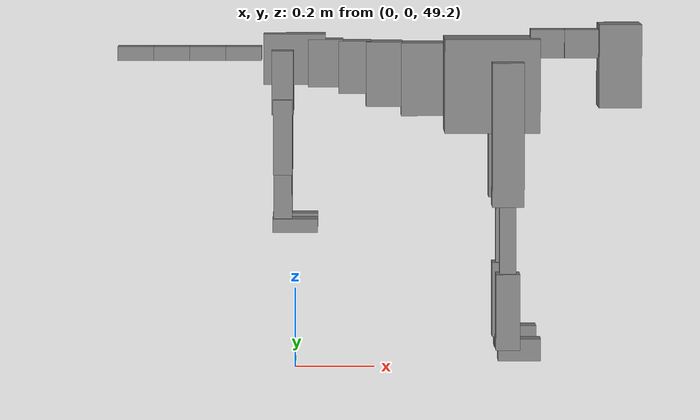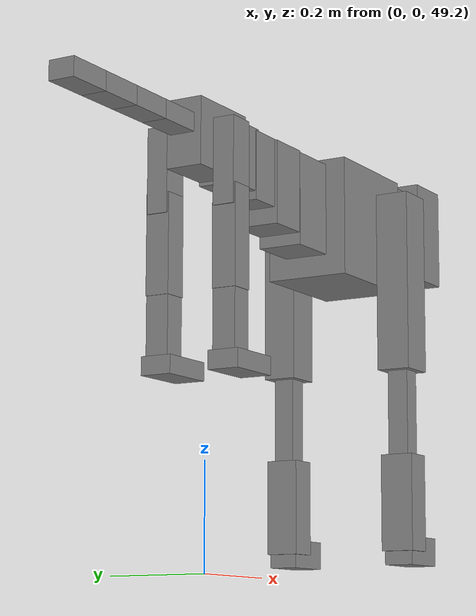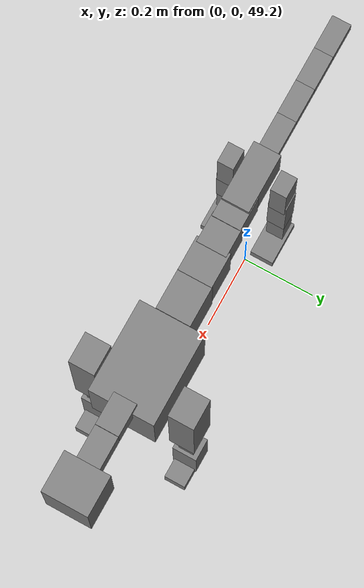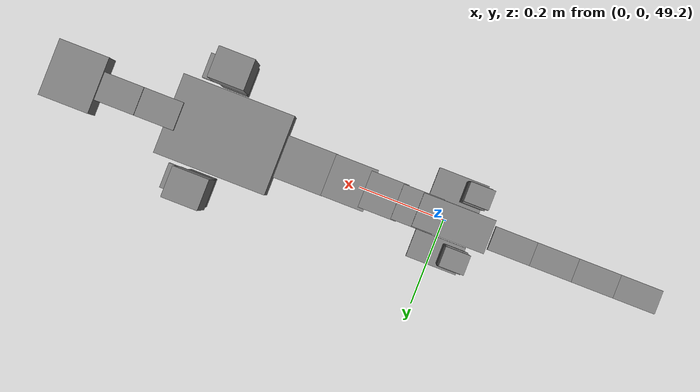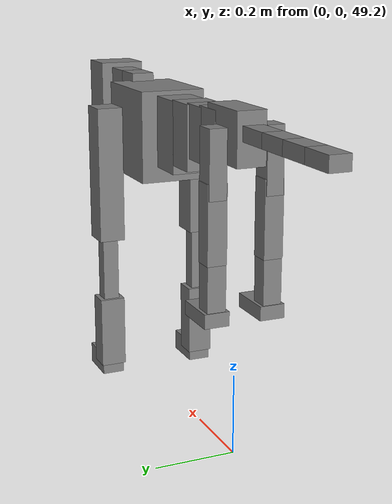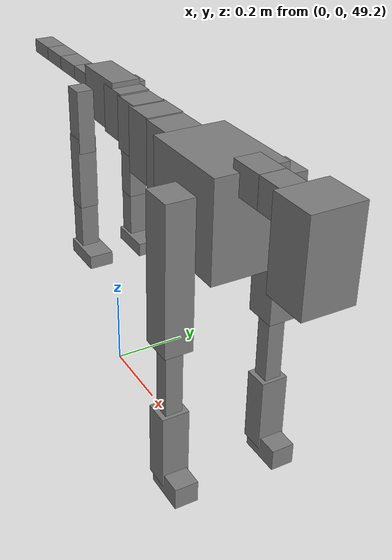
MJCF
<mujoco model="dog">

    <default>
        <joint armature="0.02" stiffness="1" damping="0.2" limited="true"/>
        <geom condim="3" friction="1 0.05 0.05" margin="0.01"/>
        <motor ctrllimited="true" ctrlrange="-1.0 1.0" forcelimited="true" gear="50"/>
    </default>

    <compiler inertiafromgeom="true" angle="radian"/>

    <option timestep="0.016" iterations="50" tolerance="1e-10" solver="Newton" jacobian="dense" cone="pyramidal"/>

    <size nconmax="20000" njmax="60000" nstack="5000000"/>
    <visual>
        <map force="0.1" zfar="30"/>
        <rgba haze="0.15 0.25 0.35 1"/>
        <quality shadowsize="2048"/>
        <global offwidth="800" offheight="800"/>
    </visual>

    <asset>
        <texture type="skybox" builtin="gradient" rgb1="0.3 0.5 0.7" rgb2="0 0 0" width="512" height="512"/>
        <texture name="texplane" type="2d" builtin="checker" rgb1=".2 .3 .4" rgb2=".1 0.15 0.2" width="512" height="512"
                 mark="cross" markrgb=".8 .8 .8"/>
        <texture name="texgeom" type="cube" builtin="flat" mark="cross" width="127" height="1278" rgb1="0.8 0.6 0.4"
                 rgb2="0.8 0.6 0.4" markrgb="1 1 1" random="0.01"/>

        <material name="matplane" reflectance="0.3" texture="texplane" texrepeat="1 1" texuniform="true"/>
        <material name="matgeom" texture="texgeom" texuniform="true" rgba="0.8 0.6 .4 1"/>
    </asset>

    <worldbody>
        <geom name="floor" pos="0 0 0" size="0 0 .25" type="plane" material="matplane" condim="3"/>

        <light directional="false" diffuse=".2 .2 .2" specular="0 0 0" pos="0 0 5" dir="0 0 -1" castshadow="false"/>
        <light mode="targetbodycom" target="torso" directional="false" diffuse=".8 .8 .8" specular="0.3 0.3 0.3"
               pos="0 0 4.0" dir="0 0 -1"/>

        <body name="root" pos="0 0 50">
            <freejoint name="root_1"/>
            <geom type="box" pos="0 0 -0.02" size="0.0774  0.0358  0.063" density="2030"/>

            <body name="spine1" pos="0.054 0 0">
                <joint name="spine1_y" axis="0 1 0" range="0 0.7" limited="true"/>
                <geom type="box" pos="0.02375 0 -0.03" size="0.04375  0.0375  0.05985" density="2030"/>

                <body name="spine2" pos="0.0612 0 0">
                    <joint name="spine2_y" axis="0 1 0" range="-0.15 0.15" limited="true"/>
                    <geom type="box" pos="0.03555  0  -0.04" size="0.04055  0.039  0.06615" density="2030"/>

                    <body name="spine3" pos="0.0730 0 0">
                        <joint name="spine3_y" axis="0 1 0" range="-0.15 0.15" limited="true"/>
                        <geom type="box" pos="0.03555  0  -0.057" size="0.04555  0.0445  0.081" density="2030"/>

                        <body name="spine4" pos="0.0780 0 0">
                            <joint name="spine4_y" axis="0 1 0" range="-0.15 0.15" limited="true"/>
                            <geom type="box" pos="0.05265  0  -0.07" size="0.05265  0.045  0.09135" density="2030"/>

                            <body name="torso" pos="0.1082 0 0">
                                <joint name="torso_y" axis="0 1 0" range="-0.15 0.15" limited="true"/>
                                <geom type="box" pos="0.11925  0  -0.085" size="0.11925  0.085  0.11745"
                                      density="2030"/>

                                <body name="neck1" pos="0.2160  0   0.0180">
                                    <joint name="neck1_y" axis="0 1 0" range="-1.2  -1" limited="true"/>
                                    <geom type="box" pos="0.0423  0  0" size="0.0423  0.03  0.036" density="2325"/>

                                    <body name="neck2" pos="0.0853  0  0">
                                        <joint name="neck2_y" axis="0 1 0" range="0.1  0" limited="true"/>
                                        <geom type="box" pos="0.0423  0  0" size="0.0423  0.03  0.036" density="2325"/>

                                        <body name="head" pos="0.0853  0  0">
                                            <joint name="head_y" axis="0 1 0" range="-0.3  -0.2" limited="true"/>
                                            <geom type="box" pos="0.0531  0  -0.055" size="0.0531  0.06  0.1044"
                                                  density="4030"/>

                                        </body>
                                    </body>
                                </body>

                                <body name="front_shoulder" pos="0.156  0   -0.0480">
                                    <joint name="front_shoulder_y" axis="0 1 0" range="-1 1.5" limited="true"/>
                                    <geom type="box" pos="0 0.13 -0.1526" size="0.0397  0.0339  0.1792" density="1158"/>
                                    <geom type="box" pos="0 -0.13 -0.1526" size="0.0397  0.0339  0.1792"
                                          density="1158"/>

                                    <body name="front_elbow" pos="0  0  -0.3052">
                                        <joint name="front_elbow_y" axis="0 1 0" range="-2 0" limited="true"/>
                                        <geom type="box" pos="0 0.13 -0.1041" size="0.0205  0.0209  0.1041"
                                              density="1081"/>
                                        <geom type="box" pos="0 -0.13 -0.1041" size="0.0205  0.0209  0.1041"
                                              density="1081"/>

                                        <body name="front_wrist" pos="0  0  -0.2082">
                                            <joint name="front_wrist_y" axis="0 1 0" range="-0.2 0" limited="true"/>
                                            <geom type="box" pos="0 0.13 -0.0818" size="0.0300  0.0333  0.0950"
                                                  density="1664"/>
                                            <geom type="box" pos="0 -0.13 -0.0818" size="0.0300  0.0333  0.0950"
                                                  density="1664"/>

                                            <body name="front_finger_end" pos="0  0  -0.1637">
                                                <joint name="front_finger_y" axis="0 1 0" range="-0.4 1"
                                                       limited="true"/>
                                                <geom type="box" pos="0.0290  0.13  -0.0126"
                                                      size="0.0532  0.0290  0.0276" density="1515"/>
                                                <geom type="box" pos="0.0290  -0.13  -0.0126"
                                                      size="0.0532  0.0290  0.0276" density="1515"/>

                                            </body>

                                        </body>
                                    </body>
                                </body>

                            </body>
                        </body>
                    </body>
                </body>
            </body>

            <body name="back_hip" pos="-0.03 0 -0.018">
                <joint name="back_hip_y" axis="0 1 0" range="-1.5 0.3" limited="true"/>
                <geom type="box" pos="0 0.07 -0.0574" size="0.0269  0.0211  0.0802" density="1154"/>
                <geom type="box" pos="0 -0.07 -0.0574" size="0.0269  0.0211  0.0802" density="1154"/>

                <body name="back_knee" pos="0  0  -0.1148">
                    <joint name="back_knee_y" axis="0 1 0" range="0 2.8" limited="true"/>
                    <geom type="box" pos="0 0.07 -0.0782" size="0.0241  0.0237  0.0938" density="1227"/>
                    <geom type="box" pos="0 -0.07 -0.0782" size="0.0241  0.0237  0.0938" density="1227"/>

                    <body name="back_ankle" pos="0  0  -0.1564">
                        <joint name="back_ankle_y" axis="0 1 0" range="-2.2 0" limited="true"/>
                        <geom type="box" pos="0 0.07 -0.0702" size="0.0228  0.0228  0.0814" density="1284"/>
                        <geom type="box" pos="0 -0.07 -0.0702" size="0.0228  0.0228  0.0814" density="1284"/>

                        <body name="back_toe_end" pos="0  0  -0.1403">
                            <joint name="back_toe_y" axis="0 1 0" range="-0.4 1" limited="true"/>
                            <geom type="box" pos="0.0308  0.07  -0.0023" size="0.0565  0.0308  0.0173" density="1515"/>
                            <geom type="box" pos="0.0308  -0.07  -0.0023" size="0.0565  0.0308  0.0173" density="1515"/>

                        </body>
                    </body>
                </body>
            </body>

            <body name="tail1" pos="-0.074 0 -0.006">
                <joint name="tail1_y" axis="0 1 0" range="-0.2 0.2" limited="true"/>
                <geom type="box" pos="-0.0536  0  0" size="0.045  0.025  0.0175" density="1587"/>

                <body name="tail2" pos="-0.09 0 0">
                    <joint name="tail2_y" axis="0 1 0" range="-0.2 0.2" limited="true"/>
                    <geom type="box" pos="-0.0536  0  0" size="0.045  0.025  0.0175" density="1587"/>

                    <body name="tail3" pos="-0.09 0 0">
                        <joint name="tail3_y" axis="0 1 0" range="-0.2 0.2" limited="true"/>
                        <geom type="box" pos="-0.0536  0  0" size="0.045  0.025  0.0175" density="1587"/>

                        <body name="tail4" pos="-0.09 0 0">
                            <joint name="tail4_y" axis="0 1 0" range="-0.2 0.2" limited="true"/>
                            <geom type="box" pos="-0.0536  0  0" size="0.045  0.025  0.0175" density="1587"/>

                        </body>
                    </body>
                </body>
            </body>
        </body>
    </worldbody>

    <actuator>
        <motor joint="spine1_y" forcerange="-150 150     "/>
        <motor joint="spine2_y" forcerange="-150 150     "/>
        <motor joint="spine3_y" forcerange="-150 150     "/>
        <motor joint="spine4_y" forcerange="-150 150     "/>
        <motor joint="torso_y" forcerange="-150 150     "/>
        <motor joint="neck1_y" forcerange="-100 100       "/>
        <motor joint="neck2_y" forcerange="-100 100       "/>
        <motor joint="head_y" forcerange="-150 150       "/>
        <motor joint="front_shoulder_y" forcerange="-163.36 162.64"/>
        <motor joint="front_elbow_y" forcerange="-133.40 118.84"/>
        <motor joint="front_wrist_y" forcerange="-145.21 121.37"/>
        <motor joint="front_finger_y" forcerange="-52.39 62.48"/>
        <motor joint="back_hip_y" forcerange="-218.96 262.51"/>
        <motor joint="back_knee_y" forcerange="-287.79 257.27"/>
        <motor joint="back_angle_y" forcerange="-182.06 82.35"/>
        <motor joint="back_toe_y" forcerange="-120.13 46.39"/>
        <motor joint="tail1_y" forcerange="-50 50     "/>
        <motor joint="tail2_y" forcerange="-50 50     "/>
        <motor joint="tail3_y" forcerange="-50 50     "/>
        <motor joint="tail4_y" forcerange="-50 50     "/>
    </actuator>
</mujoco>
